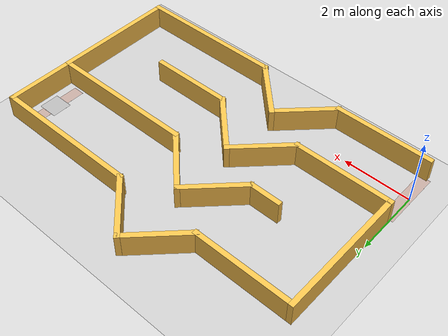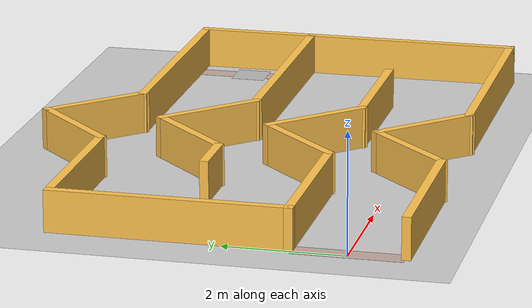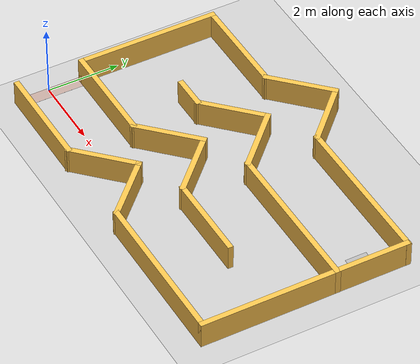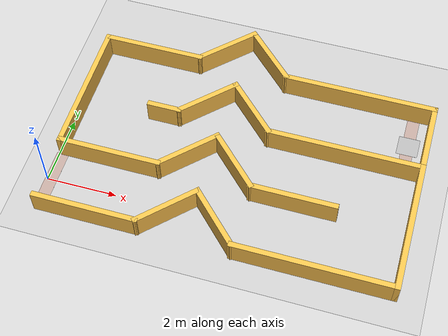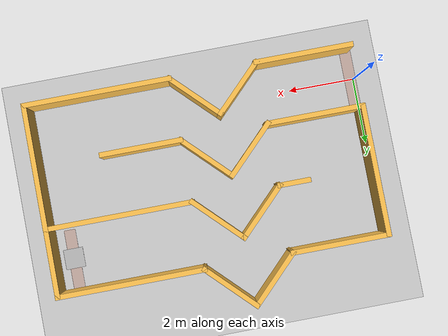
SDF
<sdf version="1.7">
 <world name="default">
  <light name="sun" type="directional">
   <pose>0 0 10 0 -0 0</pose>
   <diffuse>0.8 0.8 0.8 1</diffuse>
   <specular>0.2 0.2 0.2 1</specular>
   <attenuation>
    <range>1000</range>
    <constant>0.9</constant>
    <linear>0.01</linear>
    <quadratic>0.001</quadratic>
   </attenuation>
   <direction>-0.5 0.1 -0.9</direction>
   <spot><inner_angle>0</inner_angle><outer_angle>0</outer_angle><falloff>0</falloff></spot>
  </light>
  <model name="ground_plane">
   <static>1</static>
   <link name="link">
    <collision name="collision">
     <geometry><plane><normal>0 0 1</normal><size>100 100</size></plane></geometry>
     <surface>
      <contact><collide_bitmask>65535</collide_bitmask></contact>
      <friction><ode><mu>100</mu><mu2>50</mu2></ode></friction>
     </surface>
    </collision>
    <visual name="visual">
     <cast_shadows>0</cast_shadows>
     <geometry><plane><normal>0 0 1</normal><size>100 100</size></plane></geometry>
     <material>
      <script><uri>file://media/materials/scripts/gazebo.material</uri><name>Gazebo/Grey</name></script>
     </material>
    </visual>
   </link>
  </model>
  <gravity>0 0 -9.8</gravity>
  <magnetic_field>6e-06 2.3e-05 -4.2e-05</magnetic_field>
  <atmosphere type="adiabatic"/>
  <physics type="ode">
   <max_step_size>0.001</max_step_size>
   <real_time_factor>1</real_time_factor>
   <real_time_update_rate>1000</real_time_update_rate>
  </physics>
  <scene><ambient>0.4 0.4 0.4 1</ambient><background>0.7 0.7 0.7 1</background><shadows>1</shadows></scene>
  <spherical_coordinates>
   <surface_model>EARTH_WGS84</surface_model>
   <latitude_deg>0</latitude_deg>
   <longitude_deg>0</longitude_deg>
   <elevation>0</elevation>
   <heading_deg>0</heading_deg>
  </spherical_coordinates>
  <model name="qian1">
   <pose>4.99457 2.58953 0 0 -0 0</pose>
   <link name="Wall_2">
    <collision name="Wall_2_Collision">
     <geometry><box><size>3 0.15 0.7</size></box></geometry>
     <pose>0 0 0.35 0 -0 0</pose>
    </collision>
    <visual name="Wall_2_Visual">
     <pose>0 0 0.35 0 -0 0</pose>
     <geometry><box><size>3 0.15 0.7</size></box></geometry>
     <material>
      <script><uri>file://media/materials/scripts/gazebo.material</uri><name>Gazebo/Grey</name></script>
      <ambient>1 0.764706 0.305882 1</ambient>
     </material>
     <meta><layer>0</layer></meta>
    </visual>
    <pose>-3.483 -3.504 0 0 -0 0</pose>
   </link>
   <link name="Wall_3">
    <collision name="Wall_3_Collision">
     <geometry><box><size>2 0.15 0.7</size></box></geometry>
     <pose>0 0 0.35 0 -0 0</pose>
    </collision>
    <visual name="Wall_3_Visual">
     <pose>0 0 0.35 0 -0 0</pose>
     <geometry><box><size>2 0.15 0.7</size></box></geometry>
     <material>
      <script><uri>file://media/materials/scripts/gazebo.material</uri><name>Gazebo/Grey</name></script>
      <ambient>1 0.764706 0.305882 1</ambient>
     </material>
     <meta><layer>0</layer></meta>
    </visual>
    <pose>-1.404 -2.85 0 0 -0 0.785398</pose>
   </link>
   <link name="Wall_4">
    <collision name="Wall_4_Collision">
     <geometry><box><size>2 0.15 0.7</size></box></geometry>
     <pose>0 0 0.35 0 -0 0</pose>
    </collision>
    <visual name="Wall_4_Visual">
     <pose>0 0 0.35 0 -0 0</pose>
     <geometry><box><size>2 0.15 0.7</size></box></geometry>
     <material>
      <script><uri>file://media/materials/scripts/gazebo.material</uri><name>Gazebo/Grey</name></script>
      <ambient>1 0.764706 0.305882 1</ambient>
     </material>
     <meta><layer>0</layer></meta>
    </visual>
    <pose>-0.096 -2.85 0 0 -0 -0.785398</pose>
   </link>
   <link name="Wall_54">
    <collision name="Wall_54_Collision">
     <geometry><box><size>3 0.15 0.7</size></box></geometry>
     <pose>0 0 0.35 0 -0 0</pose>
    </collision>
    <visual name="Wall_54_Visual">
     <pose>0 0 0.35 0 -0 0</pose>
     <geometry><box><size>3 0.15 0.7</size></box></geometry>
     <material>
      <script><uri>file://media/materials/scripts/gazebo.material</uri><name>Gazebo/Grey</name></script>
      <ambient>1 0.764706 0.305882 1</ambient>
     </material>
     <meta><layer>0</layer></meta>
    </visual>
    <pose>-3.483 -1.654 0 0 -0 0</pose>
   </link>
   <link name="Wall_55">
    <collision name="Wall_55_Collision">
     <geometry><box><size>2 0.15 0.7</size></box></geometry>
     <pose>0 0 0.35 0 -0 0</pose>
    </collision>
    <visual name="Wall_55_Visual">
     <pose>0 0 0.35 0 -0 0</pose>
     <geometry><box><size>2 0.15 0.7</size></box></geometry>
     <material>
      <script><uri>file://media/materials/scripts/gazebo.material</uri><name>Gazebo/Grey</name></script>
      <ambient>1 0.764706 0.305882 1</ambient>
     </material>
     <meta><layer>0</layer></meta>
    </visual>
    <pose>-1.404 -1 0 0 -0 0.785398</pose>
   </link>
   <link name="Wall_56">
    <collision name="Wall_56_Collision">
     <geometry><box><size>2 0.15 0.7</size></box></geometry>
     <pose>0 0 0.35 0 -0 0</pose>
    </collision>
    <visual name="Wall_56_Visual">
     <pose>0 0 0.35 0 -0 0</pose>
     <geometry><box><size>2 0.15 0.7</size></box></geometry>
     <material>
      <script><uri>file://media/materials/scripts/gazebo.material</uri><name>Gazebo/Grey</name></script>
      <ambient>1 0.764706 0.305882 1</ambient>
     </material>
     <meta><layer>0</layer></meta>
    </visual>
    <pose>-0.096 -1 0 0 -0 -0.785398</pose>
   </link>
   <link name="Wall_57">
    <collision name="Wall_57_Collision">
     <geometry><box><size>2.5 0.15 0.7</size></box></geometry>
     <pose>0 0 0.35 0 -0 0</pose>
    </collision>
    <visual name="Wall_57_Visual">
     <pose>0 0 0.35 0 -0 0</pose>
     <geometry><box><size>2.5 0.15 0.7</size></box></geometry>
     <material>
      <script><uri>file://media/materials/scripts/gazebo.material</uri><name>Gazebo/Grey</name></script>
      <ambient>1 0.764706 0.305882 1</ambient>
     </material>
     <meta><layer>0</layer></meta>
    </visual>
    <pose>1.733 -1.654 0 0 -0 0</pose>
   </link>
   <link name="Wall_63">
    <collision name="Wall_63_Collision">
     <geometry><box><size>2 0.15 0.7</size></box></geometry>
     <pose>0 0 0.35 0 -0 0</pose>
    </collision>
    <visual name="Wall_63_Visual">
     <pose>0 0 0.35 0 -0 0</pose>
     <geometry><box><size>2 0.15 0.7</size></box></geometry>
     <material>
      <script><uri>file://media/materials/scripts/gazebo.material</uri><name>Gazebo/Grey</name></script>
      <ambient>1 0.764706 0.305882 1</ambient>
     </material>
     <meta><layer>0</layer></meta>
    </visual>
    <pose>-1.404 0.85 0 0 -0 0.785398</pose>
   </link>
   <link name="Wall_64">
    <collision name="Wall_64_Collision">
     <geometry><box><size>2 0.15 0.7</size></box></geometry>
     <pose>0 0 0.35 0 -0 0</pose>
    </collision>
    <visual name="Wall_64_Visual">
     <pose>0 0 0.35 0 -0 0</pose>
     <geometry><box><size>2 0.15 0.7</size></box></geometry>
     <material>
      <script><uri>file://media/materials/scripts/gazebo.material</uri><name>Gazebo/Grey</name></script>
      <ambient>1 0.764706 0.305882 1</ambient>
     </material>
     <meta><layer>0</layer></meta>
    </visual>
    <pose>-0.096 0.85 0 0 -0 -0.785398</pose>
   </link>
   <link name="Wall_65">
    <collision name="Wall_65_Collision">
     <geometry><box><size>4.5 0.15 0.7</size></box></geometry>
     <pose>0 0 0.35 0 -0 0</pose>
    </collision>
    <visual name="Wall_65_Visual">
     <pose>0 0 0.35 0 -0 0</pose>
     <geometry><box><size>4.5 0.15 0.7</size></box></geometry>
     <material>
      <script><uri>file://media/materials/scripts/gazebo.material</uri><name>Gazebo/Grey</name></script>
      <ambient>1 0.764706 0.305882 1</ambient>
     </material>
     <meta><layer>0</layer></meta>
    </visual>
    <pose>2.733 0.196 0 0 -0 0</pose>
   </link>
   <link name="Wall_67">
    <collision name="Wall_67_Collision">
     <geometry><box><size>4.5 0.15 0.7</size></box></geometry>
     <pose>0 0 0.35 0 -0 0</pose>
    </collision>
    <visual name="Wall_67_Visual">
     <pose>0 0 0.35 0 -0 0</pose>
     <geometry><box><size>4.5 0.15 0.7</size></box></geometry>
     <material>
      <script><uri>file://media/materials/scripts/gazebo.material</uri><name>Gazebo/Grey</name></script>
      <ambient>1 0.764706 0.305882 1</ambient>
     </material>
     <meta><layer>0</layer></meta>
    </visual>
    <pose>2.733 -3.504 0 0 -0 0</pose>
   </link>
   <link name="Wall_68">
    <collision name="Wall_68_Collision">
     <geometry><box><size>3.85 0.15 0.7</size></box></geometry>
     <pose>0 0 0.35 0 -0 0</pose>
    </collision>
    <visual name="Wall_68_Visual">
     <pose>0 0 0.35 0 -0 0</pose>
     <geometry><box><size>3.85 0.15 0.7</size></box></geometry>
     <material>
      <script><uri>file://media/materials/scripts/gazebo.material</uri><name>Gazebo/Grey</name></script>
      <ambient>1 0.764706 0.305882 1</ambient>
     </material>
     <meta><layer>0</layer></meta>
    </visual>
    <pose>4.908 -1.654 0 0 -0 1.5708</pose>
   </link>
   <link name="Wall_77">
    <collision name="Wall_77_Collision">
     <geometry><box><size>1 0.15 0.7</size></box></geometry>
     <pose>0 0 0.35 0 -0 0</pose>
    </collision>
    <visual name="Wall_77_Visual">
     <pose>0 0 0.35 0 -0 0</pose>
     <geometry><box><size>1 0.15 0.7</size></box></geometry>
     <material>
      <script><uri>file://media/materials/scripts/gazebo.material</uri><name>Gazebo/Grey</name></script>
      <ambient>1 0.764706 0.305882 1</ambient>
     </material>
     <meta><layer>0</layer></meta>
    </visual>
    <pose>-2.483 0.196 0 0 -0 3.14159</pose>
   </link>
   <link name="Wall_79">
    <collision name="Wall_79_Collision">
     <geometry><box><size>4 0.15 0.7</size></box></geometry>
     <pose>0 0 0.35 0 -0 0</pose>
    </collision>
    <visual name="Wall_79_Visual">
     <pose>0 0 0.35 0 -0 0</pose>
     <geometry><box><size>4 0.15 0.7</size></box></geometry>
     <material>
      <script><uri>file://media/materials/scripts/gazebo.material</uri><name>Gazebo/Grey</name></script>
      <ambient>1 0.764706 0.305882 1</ambient>
     </material>
     <meta><layer>0</layer></meta>
    </visual>
    <pose>-4.908 0.271 0 0 -0 1.5708</pose>
   </link>
   <link name="Wall_80">
    <collision name="Wall_80_Collision">
     <geometry><box><size>3 0.15 0.7</size></box></geometry>
     <pose>0 0 0.35 0 -0 0</pose>
    </collision>
    <visual name="Wall_80_Visual">
     <pose>0 0 0.35 0 -0 0</pose>
     <geometry><box><size>3 0.15 0.7</size></box></geometry>
     <material>
      <script><uri>file://media/materials/scripts/gazebo.material</uri><name>Gazebo/Grey</name></script>
      <ambient>1 0.764706 0.305882 1</ambient>
     </material>
     <meta><layer>0</layer></meta>
    </visual>
    <pose>-3.483 2.196 0 0 -0 0</pose>
   </link>
   <link name="Wall_85">
    <collision name="Wall_85_Collision">
     <geometry><box><size>2 0.15 0.7</size></box></geometry>
     <pose>0 0 0.35 0 -0 0</pose>
    </collision>
    <visual name="Wall_85_Visual">
     <pose>0 0 0.35 0 -0 0</pose>
     <geometry><box><size>2 0.15 0.7</size></box></geometry>
     <material>
      <script><uri>file://media/materials/scripts/gazebo.material</uri><name>Gazebo/Grey</name></script>
      <ambient>1 0.764706 0.305882 1</ambient>
     </material>
     <meta><layer>0</layer></meta>
    </visual>
    <pose>-1.404 2.85 0 0 -0 0.785398</pose>
   </link>
   <link name="Wall_87">
    <collision name="Wall_87_Collision">
     <geometry><box><size>2 0.15 0.7</size></box></geometry>
     <pose>0 0 0.35 0 -0 0</pose>
    </collision>
    <visual name="Wall_87_Visual">
     <pose>0 0 0.35 0 -0 0</pose>
     <geometry><box><size>2 0.15 0.7</size></box></geometry>
     <material>
      <script><uri>file://media/materials/scripts/gazebo.material</uri><name>Gazebo/Grey</name></script>
      <ambient>1 0.764706 0.305882 1</ambient>
     </material>
     <meta><layer>0</layer></meta>
    </visual>
    <pose>-0.096 2.85 0 0 -0 -0.785398</pose>
   </link>
   <link name="Wall_88">
    <collision name="Wall_88_Collision">
     <geometry><box><size>4.5 0.15 0.7</size></box></geometry>
     <pose>0 0 0.35 0 -0 0</pose>
    </collision>
    <visual name="Wall_88_Visual">
     <pose>0 0 0.35 0 -0 0</pose>
     <geometry><box><size>4.5 0.15 0.7</size></box></geometry>
     <material>
      <script><uri>file://media/materials/scripts/gazebo.material</uri><name>Gazebo/Grey</name></script>
      <ambient>1 0.764706 0.305882 1</ambient>
     </material>
     <meta><layer>0</layer></meta>
    </visual>
    <pose>2.733 2.196 0 0 -0 0</pose>
   </link>
   <static>1</static>
  </model>
  <model name="Untitled12">
   <pose>3.83609 0.593848 -0.0005 0 -0 0</pose>
   <link name="Wall_0">
    <collision name="Wall_0_Collision">
     <geometry><box><size>1.8 0.35 0.001</size></box></geometry>
     <pose>0 0 0.0005 0 -0 0</pose>
    </collision>
    <visual name="Wall_0_Visual">
     <pose>0 0 0.0005 0 -0 0</pose>
     <geometry><box><size>1.8 0.35 0.001</size></box></geometry>
     <material>
      <script><uri>file://media/materials/scripts/gazebo.material</uri><name>Gazebo/Grey</name></script>
      <ambient>0.760784 0.662745 0.627451 1</ambient>
     </material>
     <meta><layer>0</layer></meta>
    </visual>
    <pose>-3.7445 -0.5925 0 0 -0 -1.5708</pose>
   </link>
   <static>1</static>
  </model>
  <model name="Untitled">
   <pose>8.45276 5.04242 0 0 -0 1.57</pose>
   <link name="Wall_0">
    <collision name="Wall_0_Collision">
     <geometry><box><size>2 0.15 0.7</size></box></geometry>
     <pose>0 0 0.35 0 -0 0</pose>
    </collision>
    <visual name="Wall_0_Visual">
     <pose>0 0 0.35 0 -0 0</pose>
     <geometry><box><size>2 0.15 0.7</size></box></geometry>
     <material>
      <script><uri>file://media/materials/scripts/gazebo.material</uri><name>Gazebo/Grey</name></script>
      <ambient>1 0.764706 0.305882 1</ambient>
     </material>
     <meta><layer>0</layer></meta>
    </visual>
    <pose>-1.2025 -1.4475 0 0 -0 0</pose>
   </link>
   <static>1</static>
  </model>
  <model name="Untitled12_clone">
   <pose>13.1471 4.42336 -0.0005 0 -0 0</pose>
   <link name="Wall_0">
    <collision name="Wall_0_Collision">
     <geometry><box><size>1.8 0.35 0.001</size></box></geometry>
     <pose>0 0 0.0005 0 -0 0</pose>
    </collision>
    <visual name="Wall_0_Visual">
     <pose>0 0 0.0005 0 -0 0</pose>
     <geometry><box><size>1.8 0.35 0.001</size></box></geometry>
     <material>
      <script><uri>file://media/materials/scripts/gazebo.material</uri><name>Gazebo/Grey</name></script>
      <ambient>0.760784 0.662745 0.627451 1</ambient>
     </material>
     <meta><layer>0</layer></meta>
    </visual>
    <pose>-3.7445 -0.5925 0 0 -0 -1.5708</pose>
   </link>
   <static>1</static>
  </model>
  <model name="end_plane">
   <static>1</static>
   <link name="link">
    <collision name="collision">
     <geometry><plane><normal>0 0 1</normal><size>0.6 0.6</size></plane></geometry>
     <surface><friction><ode><mu>100</mu><mu2>50</mu2></ode></friction></surface>
    </collision>
    <visual name="visual">
     <cast_shadows>0</cast_shadows>
     <geometry><plane><normal>0 0 1</normal><size>0.6 0.6</size></plane></geometry>
     <material>
      <script>
       <uri>model://end_plane/materials/scripts</uri>
       <uri>model://end_plane/materials/textures/</uri>
       <name>EndPlane/Image</name>
      </script>
     </material>
    </visual>
   </link>
   <pose>9.40442 3.80743 0.001 0 0 -1.57</pose>
  </model>
 </world>
</sdf>
